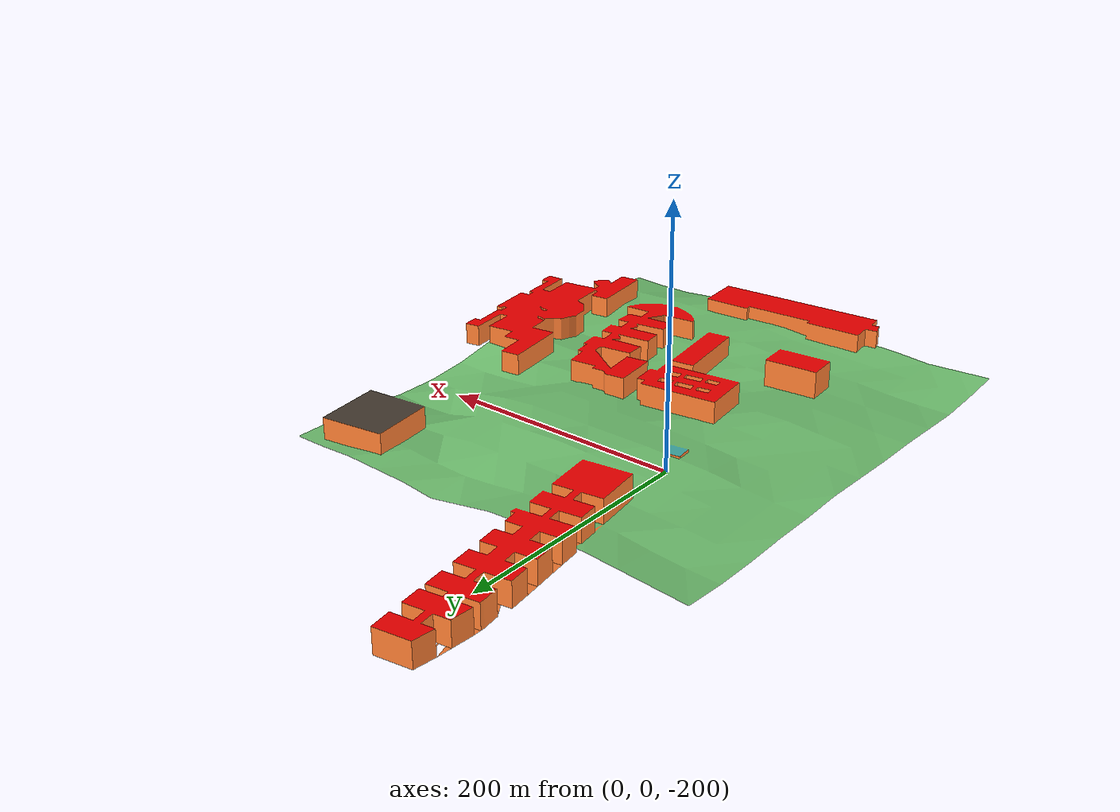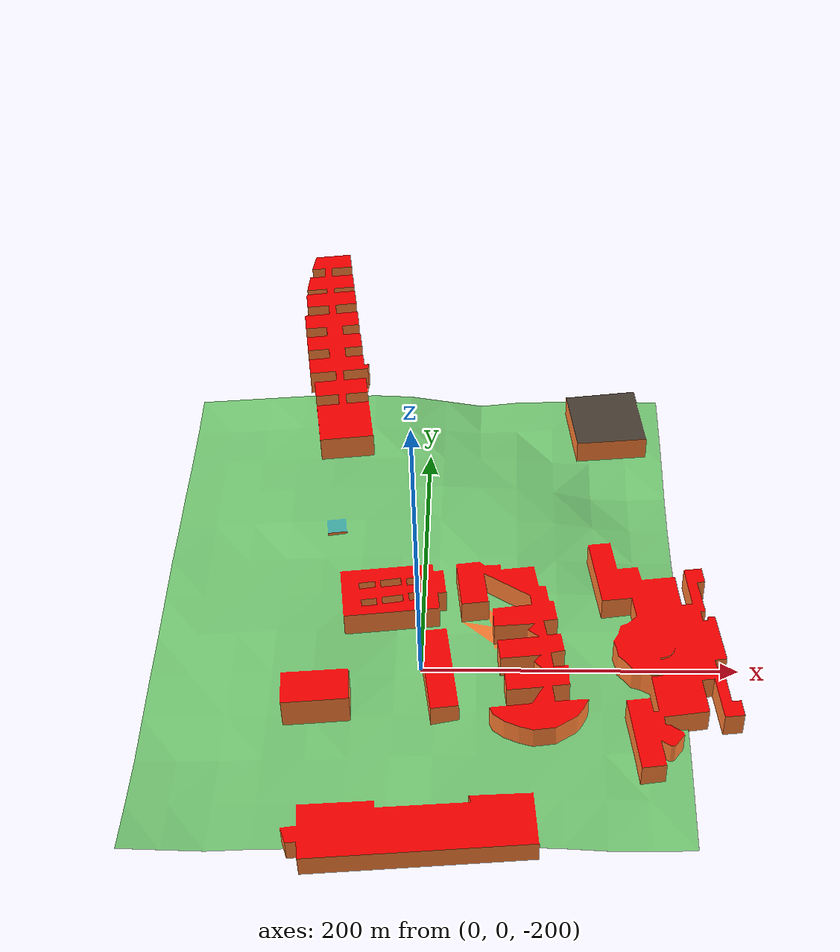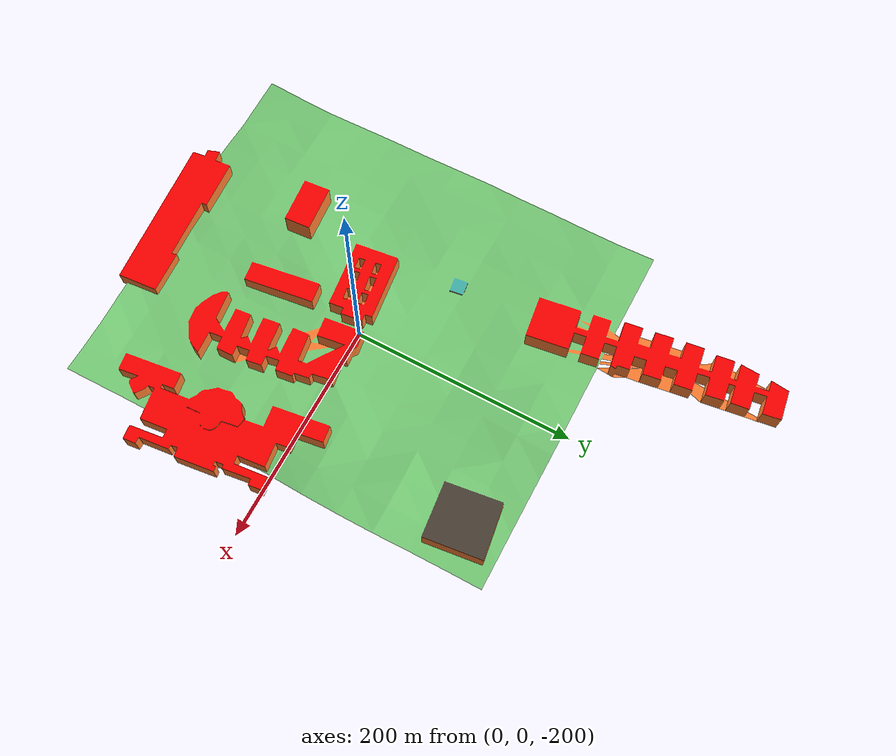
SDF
<?xml version="1.0"?>
<sdf version="1.5">
  <world name="default">

    <!-- A global light source -->
    <scene>
      <ambient>0.7 0.7 0.7 1.0</ambient>
      <shadows>true</shadows>
    </scene>

    <include>
      <uri>model://sun</uri>
    </include>

    <!-- Coordinates -->
    <spherical_coordinates>
      <surface_model>EARTH_WGS84</surface_model>
      <latitude_deg>0</latitude_deg>
      <longitude_deg>0</longitude_deg>
      <elevation>0</elevation>
      <heading_deg>0</heading_deg>
    </spherical_coordinates>

    <!-- Camera -->
    <gui fullscreen='0'>
      <camera name='user_camera'>
        <pose>-50 -50 100 0 0.2 1</pose>
        <view_controller>orbit</view_controller>
        <projection_type>perspective</projection_type>
      </camera>
    </gui>

    <include>
      <name>albacete_city</name>
      <uri>model://albacete_city</uri>
      <pose>0 0 -150 0 0 0</pose>
    </include>

    <!-- World god (to spawn and remove drones and models) -->
    <plugin name="UTRAFMAN_God" filename="libUTRAFMAN_God.so" />
  </world>
</sdf>

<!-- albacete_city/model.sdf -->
<sdf version="1.7">
  <model name="albacete_city">
    <pose>0 0 0 0 0 0 </pose>
  	<static>true</static>
    <link name="albacete_link">
        <collision name="albacete_collision">
        	<pose>0 0 0 0 0 0</pose>
            <geometry>
                <mesh>
                	<uri>albacete.dae</uri>
                </mesh>
                <scale>1 1 1</scale>
            </geometry>
            <surface>
            	<friction>
            		<ode>
            			<mu>0.001</mu>
            			<mu2>0.001</mu2>
            		</ode>
            	</friction>
            </surface>
        </collision>
        <visual name="albacete_visual">
            <geometry>
                <mesh>
                	<uri>albacete.dae</uri>
                </mesh>
                <scale>1 1 1</scale>
            </geometry>
        </visual>
    </link>
    </model>
</sdf>
